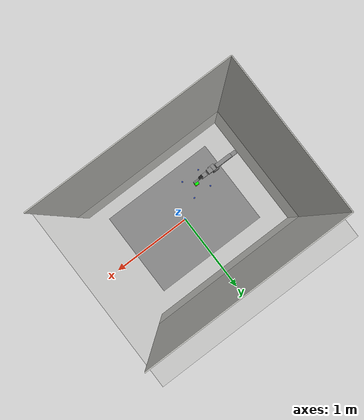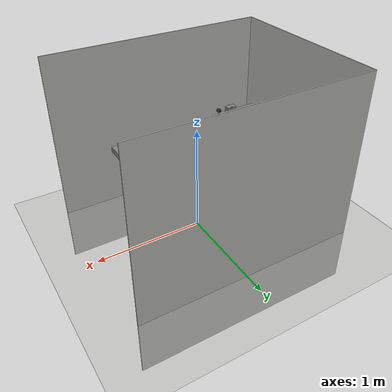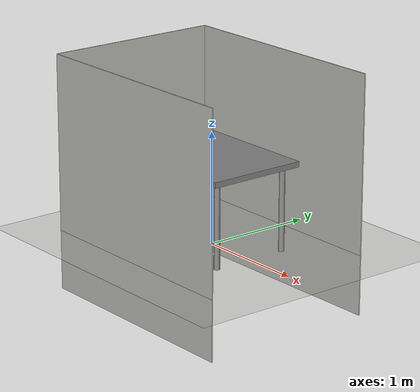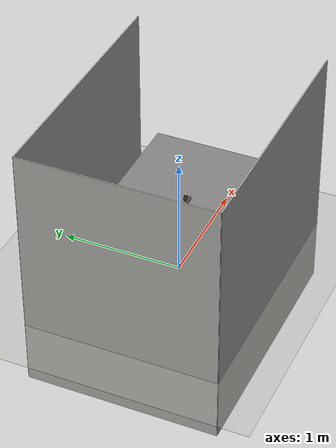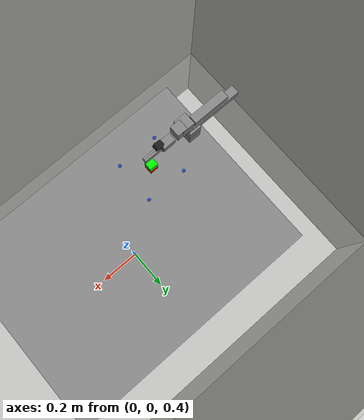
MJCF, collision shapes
<mujoco model="arx5_robosuite_tabletop_dynamic">
  <compiler angle="radian" autolimits="true" meshdir="../../source/uwlab_assets/uwlab_assets/robots/arx5/assets"/>

  <option timestep="0.008333333333333333" gravity="0 0 -9.81" integrator="implicitfast"/>

  <custom>
    <numeric name="arx5_base_pose_reference" data="-0.535 -0.21 0.8 1.0 0.0 0.0 0.0"/>
    <numeric name="table_pose_reference" data="0.0 0.0 0.799375 1.0 0.0 0.0 0.0"/>
    <numeric name="workspace_x_range" data="-0.4 -0.2"/>
    <numeric name="workspace_y_range" data="-0.3 -0.1"/>
    <numeric name="robot_xy_jitter_m" data="0.02"/>
    <numeric name="control_dt_reference" data="0.1"/>
  </custom>

  <asset>
    <texture name="floor_grid" type="2d" builtin="checker" width="512" height="512" rgb1="0.72 0.72 0.70" rgb2="0.62 0.62 0.60"/>
    <material name="floor_mat" texture="floor_grid" texrepeat="3 3" reflectance="0.05"/>
    <material name="table_silver" rgba="0.75 0.75 0.72 1" reflectance="0.15" shininess="0.35" specular="0.5"/>
    <material name="table_legs_metal" rgba="0.55 0.55 0.55 1" reflectance="0.3" shininess="0.6" specular="0.4"/>
    <material name="curtain_mat" rgba="0.72 0.72 0.70 1"/>
    <material name="receptive_cube_red" rgba="1.0 0.0 0.0 1.0"/>
    <material name="insertive_cube_green" rgba="0.0 1.0 0.0 1.0"/>
    <material name="workspace_marker_mat" rgba="0.0 0.2 1.0 0.65"/>

    <mesh name="base_link_mesh" file="meshes/base_link.obj"/>
    <mesh name="link1_mesh" file="meshes/link1.obj"/>
    <mesh name="link2_mesh" file="meshes/link2.obj"/>
    <mesh name="link3_mesh" file="meshes/link3.obj"/>
    <mesh name="link4_mesh" file="meshes/link4.obj"/>
    <mesh name="link5_mesh" file="meshes/link5.obj"/>
    <mesh name="link6_mesh" file="meshes/link6.obj"/>
    <mesh name="link7_mesh" file="meshes/link7.obj"/>
    <mesh name="link8_mesh" file="meshes/link8.obj"/>

    <material name="arx_black" rgba="0 0 0 1"/>
    <material name="arx_white" rgba="1 1 1 1"/>
    <material name="camera_mat" rgba="0.1 0.1 0.1 1"/>
    <material name="grasp_site_mat" rgba="0 0.8 1 0.7"/>
  </asset>

  <default>
    <joint damping="0.01" armature="0.01"/>
    <geom contype="1" conaffinity="1" friction="1 0.005 0.0001"/>
  </default>

  <worldbody>
    <light name="key_light" pos="-0.3 -0.4 3.0" dir="0.2 0.2 -1.0" directional="true" diffuse="0.8 0.8 0.8"/>
    <light name="fill_light" pos="0.5 0.6 2.0" diffuse="0.35 0.35 0.35"/>
    <geom name="floor" type="plane" size="2.0 2.0 0.01" material="floor_mat" pos="0 0 0" group="1"/>

    <!-- Robosuite table. Source MJCF body z=0.775 gives a tabletop at z=0.800, matching the current Isaac table root at z=0.799375. -->
    <body name="table" pos="0 0 0.775">
      <geom name="table_collision" pos="0 0 0" size="0.6 0.45 0.025" type="box" group="2" friction="1 0.005 0.0001"/>
      <geom name="table_visual" pos="0 0 0" size="0.6 0.45 0.025" type="box" conaffinity="0" contype="0" group="1" material="table_silver"/>
      <site name="table_top" pos="0 0 0.025" size="0.001 0.001 0.001" rgba="0 0 0 0"/>

      <geom name="table_leg1_visual" pos="0.5 0.35 -0.3875" size="0.025 0.3875" type="cylinder" conaffinity="0" contype="0" group="1" material="table_legs_metal"/>
      <geom name="table_leg2_visual" pos="-0.5 0.35 -0.3875" size="0.025 0.3875" type="cylinder" conaffinity="0" contype="0" group="1" material="table_legs_metal"/>
      <geom name="table_leg3_visual" pos="-0.5 -0.35 -0.3875" size="0.025 0.3875" type="cylinder" conaffinity="0" contype="0" group="1" material="table_legs_metal"/>
      <geom name="table_leg4_visual" pos="0.5 -0.35 -0.3875" size="0.025 0.3875" type="cylinder" conaffinity="0" contype="0" group="1" material="table_legs_metal"/>
    </body>

    <body name="external_cam" pos="0.5170 0.3270 1.3640" quat="0.3604 0.2030 0.5000 0.7609">
      <camera name="external_camera" mode="fixed" pos="0.0 0.0 0.0" quat="1.0 0.0 0.0 0.0" fovy="42.47"/>
    </body>

    <geom name="curtain_back" type="box" pos="-1.1 0.0 0.519" quat="1.0 0.0 0.0 0.0" size="0.005 0.8 1.0625" conaffinity="0" contype="0" group="1" material="curtain_mat"/>
    <geom name="curtain_left" type="box" pos="-0.05 0.8 0.519" quat="0.707 0.0 0.0 -0.707" size="0.005 1.05 1.0625" conaffinity="0" contype="0" group="1" material="curtain_mat"/>
    <geom name="curtain_right" type="box" pos="-0.05 -0.8 0.519" quat="0.707 0.0 0.0 -0.707" size="0.005 1.05 1.0625" conaffinity="0" contype="0" group="1" material="curtain_mat"/>

    <site name="workspace_xmin_ymin" pos="-0.4 -0.3 0.805" size="0.008" rgba="0.0 0.2 1.0 0.65"/>
    <site name="workspace_xmin_ymax" pos="-0.4 -0.1 0.805" size="0.008" rgba="0.0 0.2 1.0 0.65"/>
    <site name="workspace_xmax_ymin" pos="-0.2 -0.3 0.805" size="0.008" rgba="0.0 0.2 1.0 0.65"/>
    <site name="workspace_xmax_ymax" pos="-0.2 -0.1 0.805" size="0.008" rgba="0.0 0.2 1.0 0.65"/>

    <body name="receptive_cube" pos="-0.3 -0.2 0.84">
      <geom name="receptive_cube_visual" type="box" size="0.02 0.02 0.02" material="receptive_cube_red" contype="0" conaffinity="0" group="1"/>
      <geom name="receptive_cube_collision" type="box" size="0.02 0.02 0.02" mass="0.05" friction="1 0.005 0.0001" material="receptive_cube_red" contype="0" conaffinity="0" group="2"/>
    </body>

    <body name="insertive_cube" pos="-0.3 -0.2 0.87">
      <geom name="insertive_cube_visual" type="box" size="0.02 0.02 0.02" material="insertive_cube_green" contype="0" conaffinity="0" group="1"/>
      <geom name="insertive_cube_collision" type="box" size="0.02 0.02 0.02" mass="0.05" friction="1 0.005 0.0001" material="insertive_cube_green" contype="0" conaffinity="0" group="2"/>
    </body>

    <body name="arx5" pos="-0.535 -0.21 0.8" quat="1.0 0.0 0.0 0.0" gravcomp="1">
      <inertial pos="-3.0001e-05 3.0589e-05 0.027324" mass="0.43995" diaginertia="0.00017 0.00017 0.00016"/>
      <geom name="base_link_visual" type="mesh" mesh="base_link_mesh" material="arx_black" contype="0" conaffinity="0" group="1"/>
      <geom name="base_link_collision" type="box" pos="0.0 0.0 0.03" size="0.03 0.03 0.03" contype="0" conaffinity="0" group="2"/>

      <body name="link1" pos="0.0 0.0 0.0605" gravcomp="1">
        <joint name="joint1" type="hinge" axis="0.0 0.0 1.0" range="-10.0 10.0"/>
        <inertial pos="0.0054231 -0.0080289 0.017086" mass="0.066982" diaginertia="0.00008 0.00003 0.00008"/>
        <geom name="link1_visual" type="mesh" mesh="link1_mesh" material="arx_black" contype="0" conaffinity="0" group="1"/>
        <geom name="link1_collision" type="box" pos="0.0 0.0 0.02" size="0.03 0.03 0.03" contype="0" conaffinity="0" group="2"/>

        <body name="link2" pos="0.02 0.0 0.04" gravcomp="1">
          <joint name="joint2" type="hinge" axis="0.0 1.0 0.0" range="-10.0 10.0"/>
          <inertial pos="-0.13237 0.0020852 0.00010549" mass="1.0795" diaginertia="0.00051 0.01599 0.01605"/>
          <geom name="link2_visual" type="mesh" mesh="link2_mesh" material="arx_black" contype="0" conaffinity="0" group="1"/>
          <geom name="link2_collision" type="box" pos="-0.132 0.0 0.0" size="0.14 0.02 0.02" contype="0" conaffinity="0" group="2"/>

          <body name="link3" pos="-0.264 0.0 0.0" euler="3.1416 0 0" gravcomp="1">
            <joint name="joint3" type="hinge" axis="0.0 1.0 0.0" range="-10.0 10.0"/>
            <inertial pos="0.18531 0.00068376 -0.051638" mass="0.54534" diaginertia="0.00036 0.00423 0.00420"/>
            <geom name="link3_visual" type="mesh" mesh="link3_mesh" material="arx_white" contype="0" conaffinity="0" group="1"/>
            <geom name="link3_collision" type="box" pos="0.15 0.0 -0.055" quat="0.7071068 0 0.7071068 0" size="0.02 0.02 0.09" contype="0" conaffinity="0" group="2"/>

            <body name="link4" pos="0.245 0.0 -0.056" gravcomp="1">
              <joint name="joint4" type="hinge" axis="0.0 1.0 0.0" range="-10.0 10.0"/>
              <inertial pos="0.040231 0.0044807 -0.035335" mass="0.11714" diaginertia="0.00019 0.00023 0.00014"/>
              <geom name="link4_visual" type="mesh" mesh="link4_mesh" material="arx_black" contype="0" conaffinity="0" group="1"/>
              <geom name="link4_collision" type="box" pos="0.04 0.004 -0.03" size="0.03 0.03 0.03" contype="0" conaffinity="0" group="2"/>

              <body name="link5" pos="0.06775 0.0005 -0.0865" gravcomp="1">
                <joint name="joint5" type="hinge" axis="0.0 0.0 1.0" range="-10.0 10.0"/>
                <inertial pos="0.003612 -1.5455e-05 0.055214" mass="0.63488" diaginertia="0.00083 0.00082 0.00026"/>
                <geom name="link5_visual" type="mesh" mesh="link5_mesh" material="arx_black" contype="0" conaffinity="0" group="1"/>
                <geom name="link5_collision" type="box" pos="0.004 0.0 0.055" size="0.025 0.025 0.03" contype="0" conaffinity="0" group="2"/>

                <body name="link6" pos="0.02895 0.0 0.0865" euler="-3.1416 0 0" gravcomp="1">
                  <joint name="joint6" type="hinge" axis="1.0 0.0 0.0" range="-1.5708 1.5708"/>
                  <inertial pos="0.041697 2.4368e-05 0.00014464" mass="0.44089" diaginertia="0.00038 0.00028 0.00050"/>
                  <geom name="link6_visual" type="mesh" mesh="link6_mesh" material="arx_black" contype="0" conaffinity="0" group="1"/>
                  <geom name="link6_collision" type="box" pos="0.04 0.0 0.0" size="0.03 0.02 0.02" contype="0" conaffinity="0" group="2"/>
                  <site name="grasp_point" pos="0.145 0.0 0.0" size="0.006" material="grasp_site_mat"/>

                  <body name="camera_base" pos="0.057 0.0 0.0" euler="0 0 -3.1416" gravcomp="1">
                    <geom name="camera_base_visual" type="box" size="0.02 0.018 0.012" material="camera_mat" contype="0" conaffinity="0" group="1"/>
                    <body name="camera" pos="-0.0275 0.0 0.05" euler="0 0.3491 3.141592653589793" gravcomp="1">
                      <geom name="camera_visual" type="box" size="0.018 0.014 0.012" material="camera_mat" contype="0" conaffinity="0" group="1"/>
                      <camera name="wrist_camera" mode="fixed" pos="0.0 0.0 0.0" quat="1.0 0.0 0.0 0.0" fovy="42.47"/>
                    </body>
                  </body>

                  <body name="link7" pos="0.08657 0.024896 -0.0002436" gravcomp="1">
                    <joint name="joint7" type="slide" axis="0.0 1.0 0.0" range="0.0 0.044"/>
                    <inertial pos="-0.00035522 -0.007827 -0.0029883" mass="0.064798" diaginertia="0.00002 0.00003 0.00003"/>
                    <geom name="link7_visual" type="mesh" mesh="link7_mesh" material="arx_black" contype="0" conaffinity="0" group="1"/>
                    <geom name="link7_collision" type="box" pos="0.035 -0.02 0.0" size="0.04 0.005 0.015" contype="1" conaffinity="2" friction="2.0 0.005 0.0001" solimp="0.95 0.99 0.001" solref="0.01 1" group="2"/>
                  </body>

                  <body name="link8" pos="0.08657 -0.0249 -0.00024366" gravcomp="1">
                    <joint name="joint8" type="slide" axis="0.0 -1.0 0.0" range="0.0 0.044"/>
                    <inertial pos="-0.00035522 0.0078277 0.0024201" mass="0.064798" diaginertia="0.00002 0.00003 0.00003"/>
                    <geom name="link8_visual" type="mesh" mesh="link8_mesh" material="arx_black" contype="0" conaffinity="0" group="1"/>
                    <geom name="link8_collision" type="box" pos="0.035 0.02 0.0" size="0.04 0.005 0.015" contype="1" conaffinity="2" friction="2.0 0.005 0.0001" solimp="0.95 0.99 0.001" solref="0.01 1" group="2"/>
                  </body>
                </body>
              </body>
            </body>
          </body>
        </body>
      </body>
    </body>
  </worldbody>

  <keyframe>
    <key name="isaac_default" qpos="0.0 1.0 1.0 0.0 0.0 0.0 0.02 0.02"/>
  </keyframe>

  <actuator>
    <motor name="joint1_torque" joint="joint1" ctrlrange="-50.0 50.0"/>
    <motor name="joint2_torque" joint="joint2" ctrlrange="-50.0 50.0"/>
    <motor name="joint3_torque" joint="joint3" ctrlrange="-50.0 50.0"/>
    <motor name="joint4_torque" joint="joint4" ctrlrange="-50.0 50.0"/>
    <motor name="joint5_torque" joint="joint5" ctrlrange="-50.0 50.0"/>
    <motor name="joint6_torque" joint="joint6" ctrlrange="-50.0 50.0"/>
    <position name="joint7_position" joint="joint7" ctrlrange="0.002 0.044" kp="1000.0" kv="50.0"/>
    <position name="joint8_position" joint="joint8" ctrlrange="0.002 0.044" kp="1000.0" kv="50.0"/>
  </actuator>
</mujoco>
